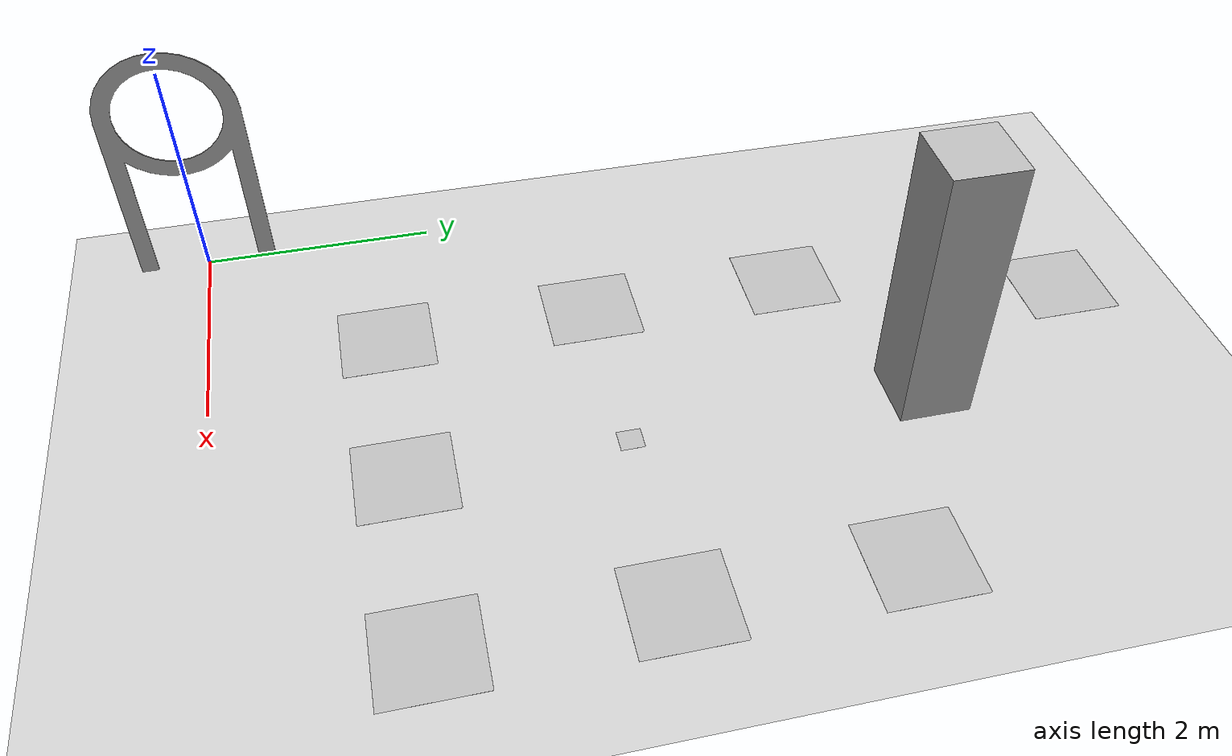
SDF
<sdf version="1.7">
 <world name="default">
  <light name="sun" type="directional">
   <pose>0 0 10 0 -0 0</pose>
   <diffuse>0.8 0.8 0.8 1</diffuse>
   <specular>0.2 0.2 0.2 1</specular>
   <attenuation>
    <range>1000</range>
    <constant>0.9</constant>
    <linear>0.01</linear>
    <quadratic>0.001</quadratic>
   </attenuation>
   <direction>-0.5 0.1 -0.9</direction>
   <spot><inner_angle>0</inner_angle><outer_angle>0</outer_angle><falloff>0</falloff></spot>
  </light>
  <model name="ground_plane">
   <pose>1.4 3.3 0 0 -0 0</pose>
   <static>1</static>
   <link name="link">
    <collision name="collision">
     <geometry><plane><normal>0 0 1</normal><size>100 100</size></plane></geometry>
     <surface>
      <contact><collide_bitmask>65535</collide_bitmask></contact>
      <friction><ode><mu>100</mu><mu2>50</mu2></ode></friction>
     </surface>
    </collision>
    <visual name="visual">
     <cast_shadows>0</cast_shadows>
     <geometry><plane><normal>0 0 1</normal><size>100 100</size></plane></geometry>
     <material>
      <script><uri>file://media/materials/scripts/gazebo.material</uri><name>Gazebo/Grey</name></script>
     </material>
    </visual>
   </link>
  </model>
  <gravity>0 0 -9.8</gravity>
  <magnetic_field>6e-06 2.3e-05 -4.2e-05</magnetic_field>
  <atmosphere type="adiabatic"/>
  <physics type="ode">
   <max_step_size>0.001</max_step_size>
   <real_time_factor>1</real_time_factor>
   <real_time_update_rate>1000</real_time_update_rate>
  </physics>
  <scene><ambient>0.4 0.4 0.4 1</ambient><background>0.7 0.7 0.7 1</background><shadows>1</shadows></scene>
  <spherical_coordinates>
   <surface_model>EARTH_WGS84</surface_model>
   <latitude_deg>0</latitude_deg>
   <longitude_deg>0</longitude_deg>
   <elevation>0</elevation>
   <heading_deg>0</heading_deg>
  </spherical_coordinates>
  <model name="Ring">
   <static>1</static>
   <link name="base_link">
    <inertial>
     <pose>-0.003154 0 0.13028 0 -0 0</pose>
     <mass>8.932</mass>
     <inertia>
      <ixx>3.2192</ixx>
      <ixy>4.4372e-19</ixy>
      <ixz>-5.3117e-16</ixz>
      <iyy>5.0328</iyy>
      <iyz>-2.0064e-16</iyz>
      <izz>1.8138</izz>
     </inertia>
    </inertial>
    <collision name="base_link_collision">
     <geometry>
      <mesh>
       <scale>1 1 1</scale>
       <uri>/home/taolin/Documents/GitHub/CRAIC_UAV_Simulator/src/Ring/meshes/base_link.STL</uri>
      </mesh>
     </geometry>
    </collision>
    <visual name="base_link_visual">
     <geometry>
      <mesh>
       <scale>1 1 1</scale>
       <uri>/home/taolin/Documents/GitHub/CRAIC_UAV_Simulator/src/Ring/meshes/base_link.STL</uri>
      </mesh>
     </geometry>
    </visual>
   </link>
   <pose>0 0 1.05 0 -6e-06 1.5708</pose>
  </model>
  <model name="boxer">
   <static>1</static>
   <link name="base_link">
    <inertial>
     <pose>-0.013342 0.020134 0 0 -0 0</pose>
     <mass>864</mass>
     <inertia><ixx>440.64</ixx><ixy>0</ixy><ixz>0</ixz><iyy>440.64</iyy><iyz>0</iyz><izz>51.84</izz></inertia>
    </inertial>
    <collision name="base_link_collision">
     <geometry>
      <mesh>
       <scale>1 1 1</scale>
       <uri>/home/taolin/Documents/GitHub/CRAIC_UAV_Simulator/src/boxer/meshes/base_link.STL</uri>
      </mesh>
     </geometry>
    </collision>
    <visual name="base_link_visual">
     <geometry>
      <mesh>
       <scale>1 1 1</scale>
       <uri>/home/taolin/Documents/GitHub/CRAIC_UAV_Simulator/src/boxer/meshes/base_link.STL</uri>
      </mesh>
     </geometry>
    </visual>
   </link>
   <pose>3 5.8 1.2 1.5708 -0 0</pose>
  </model>
  <model name="park">
   <static>1</static>
   <link name="link">
    <visual name="visual">
     <geometry><plane><normal>0 0 1</normal><size>0.8 0.8</size></plane></geometry>
     <material>
      <script>
       <uri>model://park/materials/scripts</uri>
       <uri>model://park/materials/textures</uri>
       <name>A_H/A_H</name>
      </script>
     </material>
    </visual>
   </link>
   <pose>1.4 1.5 0 0 -0 0</pose>
  </model>
  <model name="park_0">
   <static>1</static>
   <link name="link">
    <visual name="visual">
     <geometry><plane><normal>0 0 1</normal><size>0.8 0.8</size></plane></geometry>
     <material>
      <script>
       <uri>model://park/materials/scripts</uri>
       <uri>model://park/materials/textures</uri>
       <name>A_H/A_H</name>
      </script>
     </material>
    </visual>
   </link>
   <pose>3 1.5 0 0 -0 0</pose>
  </model>
  <model name="park_1">
   <static>1</static>
   <link name="link">
    <visual name="visual">
     <geometry><plane><normal>0 0 1</normal><size>0.8 0.8</size></plane></geometry>
     <material>
      <script>
       <uri>model://park/materials/scripts</uri>
       <uri>model://park/materials/textures</uri>
       <name>A_H/A_H</name>
      </script>
     </material>
    </visual>
   </link>
   <pose>4.6 1.5 0 0 -0 0</pose>
  </model>
  <model name="Picture_3">
   <static>1</static>
   <link name="link">
    <visual name="visual">
     <geometry><plane><normal>0 0 1</normal><size>0.8 0.8</size></plane></geometry>
     <material>
      <script>
       <uri>model://A_obj3/materials/scripts</uri>
       <uri>model://A_obj3/materials/textures</uri>
       <name>A_obj3/A_obj3</name>
      </script>
     </material>
    </visual>
   </link>
   <pose>1.4 5.1 0 0 -0 0</pose>
  </model>
  <model name="Picture_0">
   <static>1</static>
   <link name="link">
    <visual name="visual">
     <geometry><plane><normal>0 0 1</normal><size>0.8 0.8</size></plane></geometry>
     <material>
      <script>
       <uri>model://A_obj0/materials/scripts</uri>
       <uri>model://A_obj0/materials/textures</uri>
       <name>A_obj0/A_obj0</name>
      </script>
     </material>
    </visual>
   </link>
   <pose>1.4 3.3 0 0 -0 0</pose>
  </model>
  <model name="Picture_1">
   <static>1</static>
   <link name="link">
    <visual name="visual">
     <geometry><plane><normal>0 0 1</normal><size>0.8 0.8</size></plane></geometry>
     <material>
      <script>
       <uri>model://A_obj1/materials/scripts</uri>
       <uri>model://A_obj1/materials/textures</uri>
       <name>A_obj1/A_obj1</name>
      </script>
     </material>
    </visual>
   </link>
   <pose>4.6 3.3 0 0 -0 0</pose>
  </model>
  <model name="Picutre_2">
   <static>1</static>
   <link name="link">
    <visual name="visual">
     <geometry><plane><normal>0 0 1</normal><size>0.8 0.8</size></plane></geometry>
     <material>
      <script>
       <uri>model://A_obj2/materials/scripts</uri>
       <uri>model://A_obj2/materials/textures</uri>
       <name>A_obj2/A_obj2</name>
      </script>
     </material>
    </visual>
   </link>
   <pose>4.6 5.1 0 0 -0 0</pose>
  </model>
  <model name="Picture_Special">
   <static>1</static>
   <link name="link">
    <visual name="visual">
     <geometry><plane><normal>0 0 1</normal><size>0.8 0.8</size></plane></geometry>
     <material>
      <script>
       <uri>model://A_obj4/materials/scripts</uri>
       <uri>model://A_obj4/materials/textures</uri>
       <name>A_obj4/A_obj4</name>
      </script>
     </material>
    </visual>
   </link>
   <pose>2 7.5 0 0 -0 0</pose>
  </model>
  <model name="QR_Code">
   <static>1</static>
   <link name="link">
    <visual name="visual">
     <geometry><plane><normal>0 0 1</normal><size>0.2 0.2</size></plane></geometry>
     <material>
      <script>
       <uri>model://A_aqr/materials/scripts</uri>
       <uri>model://A_aqr/materials/textures</uri>
       <name>A_aqr/A_aqr</name>
      </script>
     </material>
    </visual>
   </link>
   <pose>3 3.3 0 0 -0 0</pose>
  </model>
 </world>
</sdf>
